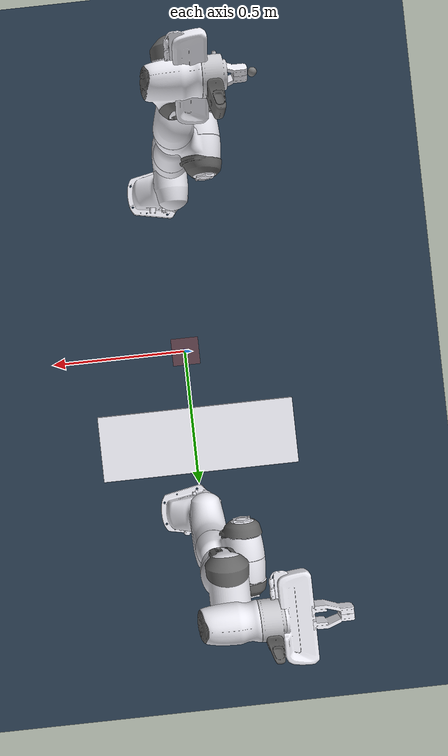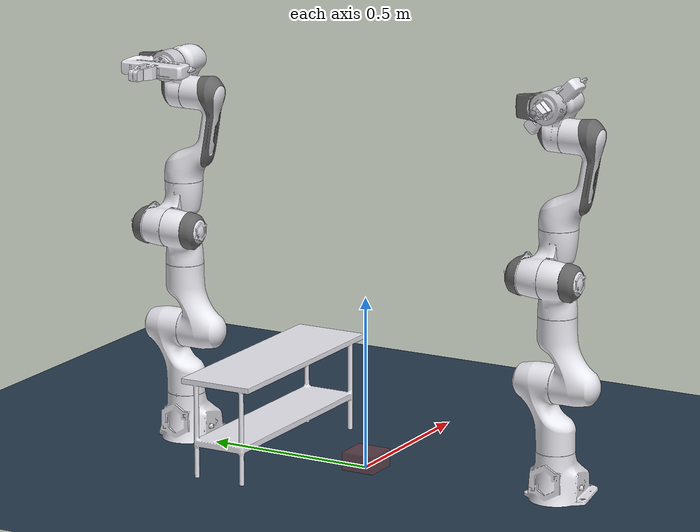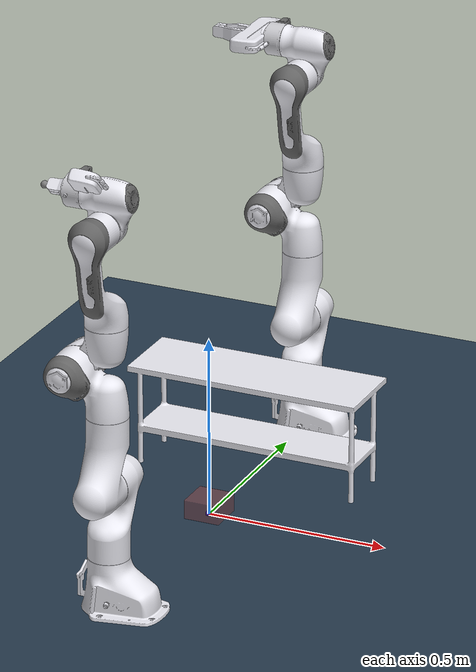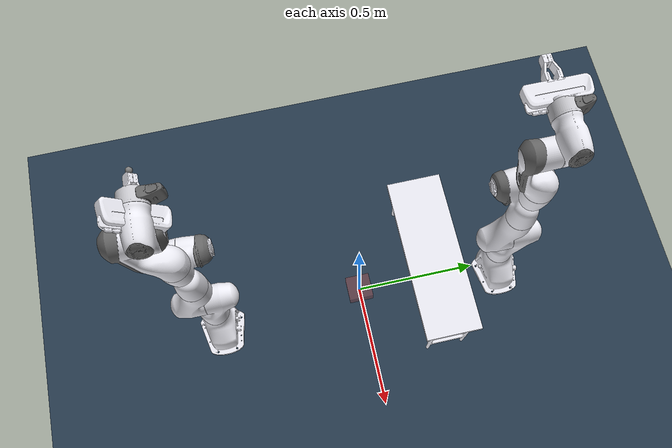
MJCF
<mujoco model="dual-panda v01">

    <include file="panda/assets/basic_scene.xml" />
    <include file="panda/assets/assets.xml" />
    <include file="panda/assets/gripper_assets.xml" />
    <include file="panda/assets/sensors.xml" />

    <!-- change this for different objects -->

    <include file="include.xml"/>

    <compiler meshdir="" />
    <option noslip_iterations="20"> </option>
    <option cone="elliptic"> </option>
    <option><flag multiccd="enable"/> </option>

    <default>
        <default class='torso'>
            <geom group='2' contype='0' conaffinity='0' rgba=".95 .99 .92 1" />
        </default>/ </default>

    <worldbody>

        <body name='torso' childclass='torso'>

            <body name='leftarm' pos='0 -0.6 0' euler='0 0 3.14'>
                <include file="panda/assets/chainL.xml" />
            </body>

            <body name='rightarm' pos='0 0.6 0' euler='0 0 3.14'>
                <include file="panda/assets/chainR.xml" />
            </body>

        </body>

        <include file="object.xml"/>

    </worldbody>

    <include file='panda/assets/actuatorL.xml' />
    <include file='panda/assets/gripper_actuatorL.xml' />
    <include file='panda/assets/actuatorR.xml' />
    <include file='panda/assets/gripper_actuatorR.xml' />

</mujoco>

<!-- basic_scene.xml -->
<mujocoinclude>
    <asset>
        <texture name="texplane" type="2d" builtin="checker" rgb1=".2 .3 .4" rgb2=".1 0.15 0.2"
                width="512" height="512"/>
        <material name="MatGnd" reflectance="0.5" texture="texplane" texrepeat="1 1" texuniform="true"/>
    </asset>

    <worldbody>
        <light directional="false" diffuse=".8 .8 .8" specular="0.3 0.3 0.3" pos="1  1 3" dir="-1 -1 -3"/>
        <light directional="false" diffuse=".8 .8 .8" specular="0.3 0.3 0.3" pos="1 -1 3" dir="-1 1 -3"/>
        <light directional="false" diffuse=".8 .8 .8" specular="0.3 0.3 0.3" pos="-1 0 3" dir="1 0 -3" />
        <geom name="ground" pos="0 0 0" size="5 5 10" material="MatGnd" type="plane" contype="1" conaffinity="1"/>
        <body name="targetL" mocap="true">
            <geom type="box" size=".05 .05 .05" contype="0" conaffinity="0" rgba=".6 .3 .3 .5"/>
            <site type="sphere" size="0.01" rgba="0 0 1 1" group="1"/>
        </body>
        <body name="targetR" mocap="true">
            <geom type="box" size=".05 .05 .05" contype="0" conaffinity="0" rgba=".6 .3 .3 .5"/>
            <site type="sphere" size="0.01" rgba="0 0 1 1" group="1"/>
        </body>
    </worldbody>
    <keyframe>
        <key name="home" qpos="0 -0.9 0 -2 0 -0.3531 0.8804 0 0 0 -0.9 0 -2 0 -0.3531 0.8804 0 0 -0.45 0.0 0.22 1 0 0 0" ctrl="0 0 0 0 0 0 0 0 0 0 0 0 0 0 0 0 0 0"/>
    </keyframe>
</mujocoinclude>

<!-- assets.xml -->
<mujocoinclude>
    <compiler angle="radian" />
    <option noslip_iterations="20"/>
    <option timestep="0.002"/>
    <size nuser_actuator="5"/>
    <option integrator="implicit"/>
    <asset>
        <mesh name="link0_col" file="../meshes/collision/link0.stl"/>
        <mesh name="link1_col" file="../meshes/collision/link1.stl"/>
        <mesh name="link2_col" file="../meshes/collision/link2.stl"/>
        <mesh name="link3_col" file="../meshes/collision/link3.stl"/>
        <mesh name="link4_col" file="../meshes/collision/link4.stl"/>
        <mesh name="link5_col" file="../meshes/collision/link5.stl"/>
        <mesh name="link6_col" file="../meshes/collision/link6.stl"/>
        <mesh name="link7_col" file="../meshes/collision/link7.stl"/>
        <mesh name="hand_col" file="../meshes/collision/hand.stl"/>
        <mesh name="link0_viz" file="../meshes/visual/link0.stl"/>
        <mesh name="link1_viz" file="../meshes/visual/link1.stl"/>
        <mesh name="link2_viz" file="../meshes/visual/link2.stl"/>
        <mesh name="link3_viz" file="../meshes/visual/link3.stl"/>
        <mesh name="link3_dark_viz" file="../meshes/visual/link3_dark.stl" scale="1.01 1.01 1.01"/>
        <mesh name="link4_viz" file="../meshes/visual/link4.stl"/>
        <mesh name="link4_dark_viz" file="../meshes/visual/link4_dark.stl" scale="1.01 1.01 1.01"/>
        <mesh name="link5_viz" file="../meshes/visual/link5.stl"/>
        <mesh name="link5_dark_viz" file="../meshes/visual/link5_dark.stl" scale="1.01 1.01 1.01"/>
        <mesh name="link6_viz" file="../meshes/visual/link6.stl"/>
        <mesh name="link6_dark_viz" file="../meshes/visual/link6_dark.stl" scale="1.01 1.01 1.01"/>
        <mesh name="link7_viz" file="../meshes/visual/link7.stl"/>
        <mesh name="link7_dark_viz" file="../meshes/visual/link7_dark.stl" scale="1.01 1.01 1.01"/>
        <mesh name="hand_viz" file="../meshes/visual/hand.stl"/>
    </asset>

    <default>
        <default class = "object">
            <default class="object_viz">
                <geom contype="0" conaffinity="0" group="0" type="mesh" rgba=".92 .92 .95 1"/>
            </default>
            <default class="object_col">
                <geom contype="1" conaffinity="1" group="3" type="mesh" rgba=".5 .6 .7 1"/>
            </default>
        </default>
    </default>

    <default>
        <default class="panda">
            <joint pos="0 0 0" axis="0 0 1" limited="true"/>
            <default class="panda_viz">
                <geom contype="0" conaffinity="0" group="0" type="mesh" rgba=".92 .92 .95 1"/>
            </default>
            <default class="panda_grey_viz">
                <geom contype="0" conaffinity="0" group="0" type="mesh" rgba=".4 .4 .4 1"/>
            </default>

            <default class="panda_col">
                <geom contype="1" conaffinity="1" group="3" type="mesh" rgba=".5 .6 .7 1"/>
            </default>
            <default class="panda_arm">
                <joint damping="100"/>
            </default>
             <default class="panda_forearm">
                <joint damping="10"/>
            </default>
             <default class="panda_finger">
                <joint damping="10" armature='5'/>
                <geom friction="10 10 10" user="0" rgba="0.5 0.6 0.7 .4" contype="1" conaffinity="0" condim="6" group="3" />
                <position user="1002 40 2001 -0.0001 0.0001"/>
            </default>
        </default>
    </default>
</mujocoinclude>

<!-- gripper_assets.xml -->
<mujocoinclude>
    <asset>
        <mesh name="finger_col" file="../meshes/collision/finger.stl" scale='1.75 1.0 1.75'/>
        <mesh name="finger_viz" file="../meshes/visual/finger.stl" scale='1.75 1.0 1.75'/>
    </asset>

    <default>
        <default class="panda_overlay">
            <joint limited="false" damping="1000" armature="1" frictionloss="10"/>
            <geom contype="0" conaffinity="0" group="2" type="mesh" rgba=".42 0.42 0.42 .5"/>
        </default>
    </default>

    <sensor>
        <jointpos name="fr_fin_jp1" joint="left_panda_finger_joint1"/>
        <jointpos name="fr_fin_jp2" joint="left_panda_finger_joint2"/>
        <jointvel name="fr_fin_jv1" joint="left_panda_finger_joint1"/>
        <jointvel name="fr_fin_jv2" joint="left_panda_finger_joint2"/>
    </sensor>

</mujocoinclude>

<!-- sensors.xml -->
<mujocoinclude>

<!-- site force torque sensors -->
    <sensor>
        <force name="frceef0" site="end_effector"/>
        <torque name="trqeef0" site="end_effector"/>
        <force name="frceef1" site="end_effector1"/>
        <torque name="trqeef1" site="end_effector1"/>
    </sensor>

<!-- joint actuator force sensors -->
    <sensor>
        <jointactuatorfrc name="LAjaf1" joint="left_panda_joint1"/>
        <jointactuatorfrc name="LAjaf2" joint="left_panda_joint2"/>
        <jointactuatorfrc name="LAjaf3" joint="left_panda_joint3"/>
        <jointactuatorfrc name="LAjaf4" joint="left_panda_joint4"/>
        <jointactuatorfrc name="LAjaf5" joint="left_panda_joint5"/>
        <jointactuatorfrc name="LAjaf6" joint="left_panda_joint6"/>
        <jointactuatorfrc name="LAjaf7" joint="left_panda_joint7"/>

        <jointactuatorfrc name="RAjaf1" joint="right_panda_joint1"/>
        <jointactuatorfrc name="RAjaf2" joint="right_panda_joint2"/>
        <jointactuatorfrc name="RAjaf3" joint="right_panda_joint3"/>
        <jointactuatorfrc name="RAjaf4" joint="right_panda_joint4"/>
        <jointactuatorfrc name="RAjaf5" joint="right_panda_joint5"/>
        <jointactuatorfrc name="RAjaf6" joint="right_panda_joint6"/>
        <jointactuatorfrc name="RAjaf7" joint="right_panda_joint7"/>
    </sensor>

<!-- finger joint force sensors -->
    <sensor>
        <jointactuatorfrc name="LHjafF1" joint="left_panda_finger_joint1"/>
        <jointactuatorfrc name="LHjafF2" joint="left_panda_finger_joint2"/>
        <jointactuatorfrc name="RHjafF1" joint="right_panda_finger_joint1"/>
        <jointactuatorfrc name="RHjafF2" joint="right_panda_finger_joint2"/>
    </sensor>

</mujocoinclude>

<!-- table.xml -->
<mujocoinclude><asset><mesh name="table_viz" file="../meshes/visual/objects/table.stl" scale="1.0 1.0 1.0" /><mesh name="tablePart-0" file="../meshes/collision/objects/decompositions/tablePart-0.stl" scale="1.0 1.0 1.0" /><mesh name="tablePart-1" file="../meshes/collision/objects/decompositions/tablePart-1.stl" scale="1.0 1.0 1.0" /><mesh name="tablePart-2" file="../meshes/collision/objects/decompositions/tablePart-2.stl" scale="1.0 1.0 1.0" /><mesh name="tablePart-3" file="../meshes/collision/objects/decompositions/tablePart-3.stl" scale="1.0 1.0 1.0" /><mesh name="tablePart-4" file="../meshes/collision/objects/decompositions/tablePart-4.stl" scale="1.0 1.0 1.0" /><mesh name="tablePart-5" file="../meshes/collision/objects/decompositions/tablePart-5.stl" scale="1.0 1.0 1.0" /><mesh name="tablePart-6" file="../meshes/collision/objects/decompositions/tablePart-6.stl" scale="1.0 1.0 1.0" /><mesh name="tablePart-7" file="../meshes/collision/objects/decompositions/tablePart-7.stl" scale="1.0 1.0 1.0" /><mesh name="tablePart-8" file="../meshes/collision/objects/decompositions/tablePart-8.stl" scale="1.0 1.0 1.0" /><mesh name="tablePart-9" file="../meshes/collision/objects/decompositions/tablePart-9.stl" scale="1.0 1.0 1.0" /><mesh name="tablePart-10" file="../meshes/collision/objects/decompositions/tablePart-10.stl" scale="1.0 1.0 1.0" /><mesh name="tablePart-11" file="../meshes/collision/objects/decompositions/tablePart-11.stl" scale="1.0 1.0 1.0" /><mesh name="tablePart-12" file="../meshes/collision/objects/decompositions/tablePart-12.stl" scale="1.0 1.0 1.0" /><mesh name="tablePart-13" file="../meshes/collision/objects/decompositions/tablePart-13.stl" scale="1.0 1.0 1.0" /><mesh name="tablePart-14" file="../meshes/collision/objects/decompositions/tablePart-14.stl" scale="1.0 1.0 1.0" /></asset></mujocoinclude>

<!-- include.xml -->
<mujocoinclude><include file="./panda/assets/table.xml" /></mujocoinclude>

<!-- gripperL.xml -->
<mujoco>
    <body name="left_panda_hand" pos="0 0 0" euler="0 0 0">
        <inertial pos="0 0 0" euler="0 0 0" mass="0.38" diaginertia="0.1 0.1 0.1" />
        <geom class="panda_viz" mesh="hand_viz"/>
        <geom class="panda_col" mesh="hand_col"/>

        <body name="left_panda_leftfinger" pos="0 0 0.0584" quat="1 0 0 0">
            <joint name="left_panda_finger_joint1"  axis="0 1 0" type="slide" range="0 0.04" damping="100" armature='5'/>
            <geom class="panda_viz" mesh="finger_viz"/>
            <geom class="panda_col" mesh="finger_col" mass="0.01"/>
        </body>

        <body name="left_panda_rightfinger" pos="0 0 0.0584" quat="1 0 0 0">
            <joint name="left_panda_finger_joint2" axis="0 -1 0" type="slide" range="0 0.04" damping="100" armature='5'/>
            <geom quat="0 0 0 1" class="panda_viz" mesh="finger_viz"/>
            <geom quat="0 0 0 1" class="panda_col" mesh="finger_col" mass="0.01"/>
        </body>
    </body>
</mujoco>

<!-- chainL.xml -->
<mujocoinclude>
    <body name="left_panda_link0" childclass="panda" >
        <geom class="panda_viz" mesh="link0_viz"/>
        <geom class="panda_col" mesh="link0_col" mass="2.91242"/>
        <body name="left_panda_link1" pos="0 0 0.333">
            <joint name="left_panda_joint1" range="-2.8973 2.8973" class="panda_arm"/>
            <geom class="panda_viz" mesh="link1_viz"/>
            <geom class="panda_col" mesh="link1_col" mass="2.7063"/>
            <body name="left_panda_link2" pos="0 0 0" quat="0.707107 -0.707107 0 0">
                <joint name="left_panda_joint2" range="-1.7628 1.7628" class="panda_arm"/>
                <geom class="panda_viz" mesh="link2_viz"/>
                <geom class="panda_col" mesh="link2_col" mass="2.73046"/>
                <body name="left_panda_link3" pos="0 -0.316 0" quat="0.707107 0.707107 0 0">
                    <joint name="left_panda_joint3" range="-2.8973 2.8973" class="panda_arm"/>
                    <geom class="panda_viz" mesh="link3_viz"/>
                    <geom class="panda_grey_viz" mesh="link3_dark_viz" pos="0 .001 0"/>
                    <geom class="panda_col" mesh="link3_col" mass="2.04104"/>
                    <body name="left_panda_link4" pos="0.0825 0 0" quat="0.707107 0.707107 0 0">
                        <joint name="left_panda_joint4" range="-3.0718 -0.4" class="panda_arm"/>
                        <geom class="panda_viz" mesh="link4_viz"/>
                        <geom class="panda_grey_viz" mesh="link4_dark_viz"/>
                        <geom class="panda_col" mesh="link4_col" mass="2.08129"/>
                        <body name="left_panda_link5" pos="-0.0825 0.384 0" quat="0.707107 -0.707107 0 0">
                            <joint name="left_panda_joint5" range="-2.8973 2.8973" class="panda_forearm"/>
                            <geom class="panda_viz" mesh="link5_viz"/>
                            <geom class="panda_grey_viz" mesh="link5_dark_viz"/>
                            <geom class="panda_col" mesh="link5_col" mass="3.00049"/>
                            <body name="left_panda_link6" pos="0 0 0" euler='1.57 0 1.57'>
                                <joint name="left_panda_joint6" range="-1.6573 2.1127" class="panda_forearm"/>
                                <geom class="panda_viz" mesh="link6_viz"/>
                                <geom class="panda_grey_viz" mesh="link6_dark_viz"/>
                                <geom class="panda_col" mesh="link6_col" mass="1.3235"/>
                                <body name="left_panda_link7" pos="0.088 0 0" euler='1.57 0 0.7854'>
                                    <joint name="left_panda_joint7" range="-2.8973 2.8973" class="panda_forearm"/>
                                    <geom class="panda_viz" mesh="link7_viz" rgba=".8 .8 .82 1"/>
                                    <geom class="panda_grey_viz" mesh="link7_dark_viz" pos="0 0 -.0008"/>
                                    <geom class="panda_col" mesh="link7_col" mass="0.2"/>
                                    <camera name="Franka_wrist_cam" pos=".050 -.050 0.15" euler="2.95 0.2 -.787"/>
                                    <site name='end_effector' pos='0 0 0.165' size='0.01' euler='1.57 0 0'/>

                                    <!-- End Effector -->
                                    <body name="left_panda_gripper">
                                       <include file = "gripperL.xml" />
                                    </body>
                                </body>
                            </body>
                        </body>
                    </body>
                </body>
            </body>
        </body>
    </body>
</mujocoinclude>

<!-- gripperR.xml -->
<mujoco>
    <body name="right_panda_hand" pos="0 0 0.107" euler="0 0 -0.785">
        <inertial pos="0 0 0" euler="0 0 0" mass="0.38" diaginertia="0.1 0.1 0.1" />
        <geom class="panda_viz" mesh="hand_viz"/>
        <geom class="panda_col" mesh="hand_col"/>

        <body name="right_panda_leftfinger" pos="0 0 0.0584" quat="1 0 0 0">
            <joint name="right_panda_finger_joint1"  axis="0 1 0" type="slide" range="0 0.04" damping="100" armature='5'/>
            <geom class="panda_viz" mesh="finger_viz"/>
            <geom class="panda_col" mesh="finger_col" mass="0.01"/>
        </body>

        <body name="right_panda_rightfinger" pos="0 0 0.0584" quat="1 0 0 0">
            <joint name="right_panda_finger_joint2" axis="0 -1 0" type="slide" range="0 0.04" damping="100" armature='5'/>
            <geom quat="0 0 0 1" class="panda_viz" mesh="finger_viz"/>
            <geom quat="0 0 0 1" class="panda_col" mesh="finger_col" mass="0.01"/>
        </body>
    </body>
    </mujoco>

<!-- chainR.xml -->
<mujocoinclude>
    <body name="right_panda_link0" childclass="panda" >
        <geom class="panda_viz" mesh="link0_viz"/>
        <geom class="panda_col" mesh="link0_col"/>
        <body name="right_panda_link1" pos="0 0 0.333">
            <joint name="right_panda_joint1" range="-2.9671 2.9671" class="panda_arm"/>
            <geom class="panda_viz" mesh="link1_viz"/>
            <geom class="panda_col" mesh="link1_col"/>
            <body name="right_panda_link2" pos="0 0 0" quat="0.707107 -0.707107 0 0">
                <joint name="right_panda_joint2" range="-1.8326 1.8326" class="panda_arm"/>
                <geom class="panda_viz" mesh="link2_viz"/>
                <geom class="panda_col" mesh="link2_col"/>
                <body name="right_panda_link3" pos="0 -0.316 0" quat="0.707107 0.707107 0 0">
                    <joint name="right_panda_joint3" range="-2.9671 2.9671" class="panda_arm"/>
                    <geom class="panda_viz" mesh="link3_viz"/>
                    <geom class="panda_grey_viz" mesh="link3_dark_viz" pos="0 .001 0"/>
                    <geom class="panda_col" mesh="link3_col"/>
                    <body name="right_panda_link4" pos="0.0825 0 0" quat="0.707107 0.707107 0 0">
                        <joint name="right_panda_joint4" range="-3.0718 -0.4" class="panda_arm"/>
                        <geom class="panda_viz" mesh="link4_viz"/>
                        <geom class="panda_grey_viz" mesh="link4_dark_viz"/>
                        <geom class="panda_col" mesh="link4_col"/>
                        <body name="right_panda_link5" pos="-0.0825 0.384 0" quat="0.707107 -0.707107 0 0">
                            <joint name="right_panda_joint5" range="-2.9671 2.9671" class="panda_forearm"/>
                            <geom class="panda_viz" mesh="link5_viz"/>
                            <geom class="panda_grey_viz" mesh="link5_dark_viz"/>
                            <geom class="panda_col" mesh="link5_col"/>
                            <body name="right_panda_link6" pos="0 0 0" euler='1.57 0 1.57'>
                                <joint name="right_panda_joint6" range="-1.6573 2.1127" class="panda_forearm"/>
                                <geom class="panda_viz" mesh="link6_viz"/>
                                <geom class="panda_grey_viz" mesh="link6_dark_viz"/>
                                <geom class="panda_col" mesh="link6_col"/>
                                <body name="right_panda_link7" pos="0.088 0 0" euler='1.57 0 0.7854'>
                                    <joint name="right_panda_joint7" range="-2.8973 2.8973" class="panda_forearm"/>
                                    <geom class="panda_viz" mesh="link7_viz" rgba=".8 .8 .82 1"/>
                                    <geom class="panda_grey_viz" mesh="link7_dark_viz" pos="0 0 -.0008"/>
                                    <geom class="panda_col" mesh="link7_col"/>
                                    <site name='end_effector1' pos='0 0 0.165' size='0.01' euler='1.57 0 0'/>

                                    <!-- End Effector -->
                                    <body name="right_panda_gripper">
                                        <include file="gripperR.xml"/>
                                    </body>
                                </body>
                            </body>
                        </body>
                    </body>
                </body>
            </body>
        </body>
    </body>
</mujocoinclude>

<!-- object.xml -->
<mujocoinclude><body name="collision_object" pos="0.0 0.3 0.2" quat="1 0 0 0"><joint type="free" name="object_virtual_joint" pos="0.0 0.0 0.0" damping="5" /><geom class="object_viz" mesh="table_viz" /><geom class="object_col" mesh="tablePart-0" /><geom class="object_col" mesh="tablePart-1" /><geom class="object_col" mesh="tablePart-2" /><geom class="object_col" mesh="tablePart-3" /><geom class="object_col" mesh="tablePart-4" /><geom class="object_col" mesh="tablePart-5" /><geom class="object_col" mesh="tablePart-6" /><geom class="object_col" mesh="tablePart-7" /><geom class="object_col" mesh="tablePart-8" /><geom class="object_col" mesh="tablePart-9" /><geom class="object_col" mesh="tablePart-10" /><geom class="object_col" mesh="tablePart-11" /><geom class="object_col" mesh="tablePart-12" /><geom class="object_col" mesh="tablePart-13" /><geom class="object_col" mesh="tablePart-14" /><inertial pos="0 0 0" mass="1" diaginertia="2 2 2" /></body></mujocoinclude>

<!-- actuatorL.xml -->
<mujocoinclude>
    <actuator>
        <motor class="panda" name="left_panda_joint1" joint="left_panda_joint1"  forcerange="-87 87" ctrlrange="-1000 1000"/>
        <motor class="panda" name="left_panda_joint2" joint="left_panda_joint2"  forcerange="-87 87" ctrlrange="-1000 1000"/>
        <motor class="panda" name="left_panda_joint3" joint="left_panda_joint3"  forcerange="-87 87"   ctrlrange="-1000 1000"/>
        <motor class="panda" name="left_panda_joint4" joint="left_panda_joint4"  forcerange="-87 87"   ctrlrange="-1000 1000"/>
        <motor class="panda" name="left_panda_joint5" joint="left_panda_joint5"  forcerange="-12 12"   ctrlrange="-1000 1000"/>
        <motor class="panda" name="left_panda_joint6" joint="left_panda_joint6"  forcerange="-12 12"   ctrlrange="-1000 1000"/>
        <motor class="panda" name="left_panda_joint7" joint="left_panda_joint7"  forcerange="-12 12"   ctrlrange="-1000 1000"/>
    </actuator>
</mujocoinclude>

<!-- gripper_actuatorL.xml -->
<mujocoinclude>
    <actuator>
        <position name="L_gripper_finger_joint1" joint="left_panda_finger_joint1" class="panda_finger" kp="5000" forcerange="-70 70" ctrlrange="0 0.04"/> velocity=".2"
        <position name="L_gripper_finger_joint2" joint="left_panda_finger_joint2" class="panda_finger" kp="5000" forcerange="-70 70" ctrlrange="0 0.04"/> velocity=".2"
    </actuator>
</mujocoinclude>

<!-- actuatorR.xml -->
<mujocoinclude>
    <actuator>
        <motor class="panda" name="right_panda_joint1" joint="right_panda_joint1" forcerange="-87 87" ctrlrange="-1000 1000"/>
        <motor class="panda" name="right_panda_joint2" joint="right_panda_joint2" forcerange="-87 87" ctrlrange="-1000 1000"/>
        <motor class="panda" name="right_panda_joint3" joint="right_panda_joint3" forcerange="-87 87"   ctrlrange="-1000 1000"/>
        <motor class="panda" name="right_panda_joint4" joint="right_panda_joint4" forcerange="-87 87"   ctrlrange="-1000 1000"/>
        <motor class="panda" name="right_panda_joint5" joint="right_panda_joint5" forcerange="-12 12"   ctrlrange="-1000 1000"/>
        <motor class="panda" name="right_panda_joint6" joint="right_panda_joint6" forcerange="-12 12"   ctrlrange="-1000 1000"/>
        <motor class="panda" name="right_panda_joint7" joint="right_panda_joint7" forcerange="-12 12"   ctrlrange="-1000 1000"/>
    </actuator>
</mujocoinclude>

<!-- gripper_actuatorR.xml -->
<mujocoinclude>
    <actuator>
        <position name="R_gripper_finger_joint1" joint="right_panda_finger_joint1" class="panda_finger" kp="5000" forcerange="-70 70" ctrlrange="0 0.04"/> velocity=".2"
        <position name="R_gripper_finger_joint2" joint="right_panda_finger_joint2" class="panda_finger" kp="5000" forcerange="-70 70" ctrlrange="0 0.04"/> velocity=".2"
    </actuator>
</mujocoinclude>
